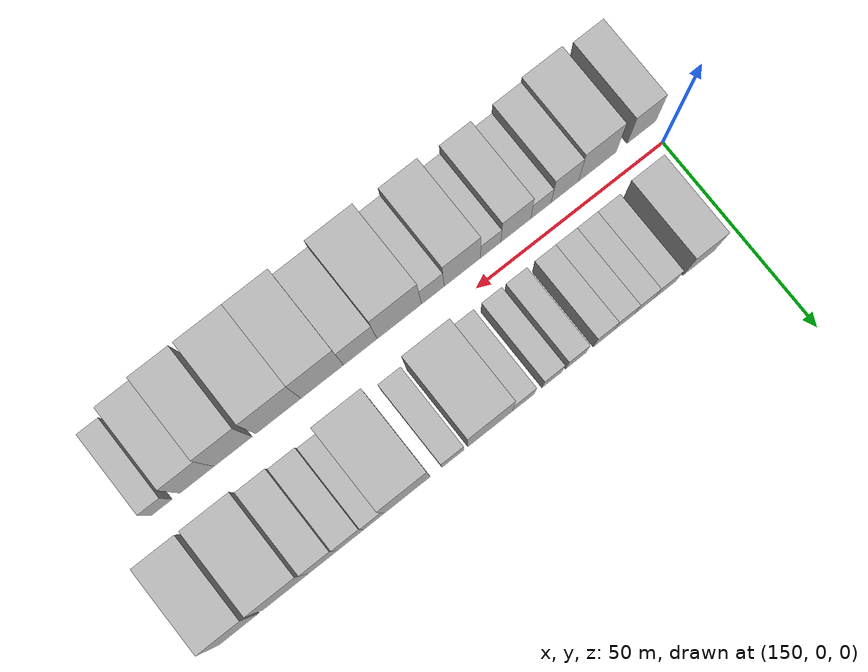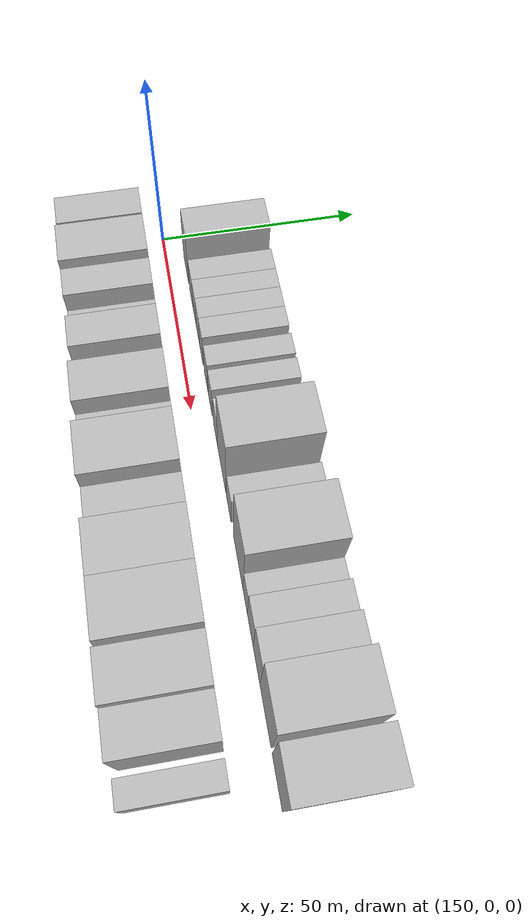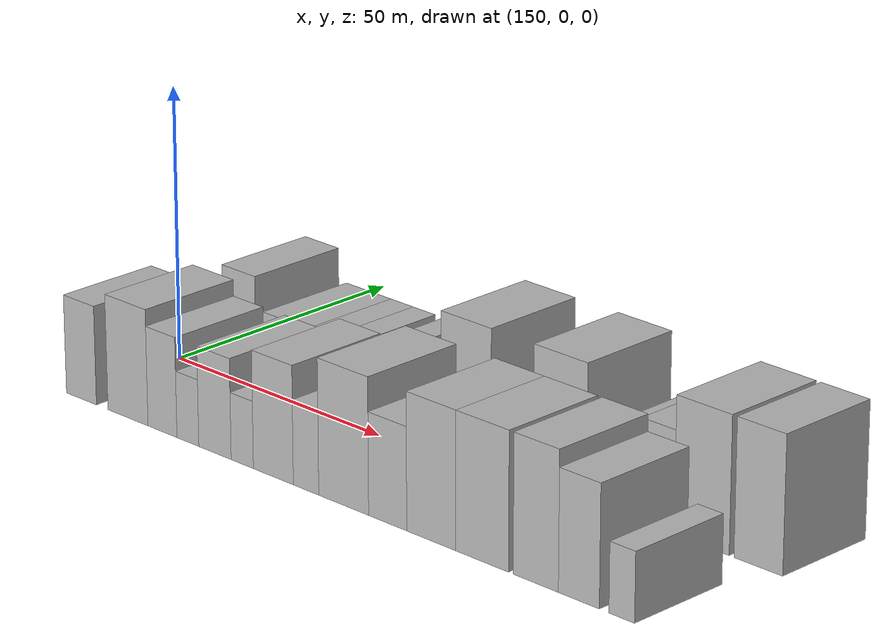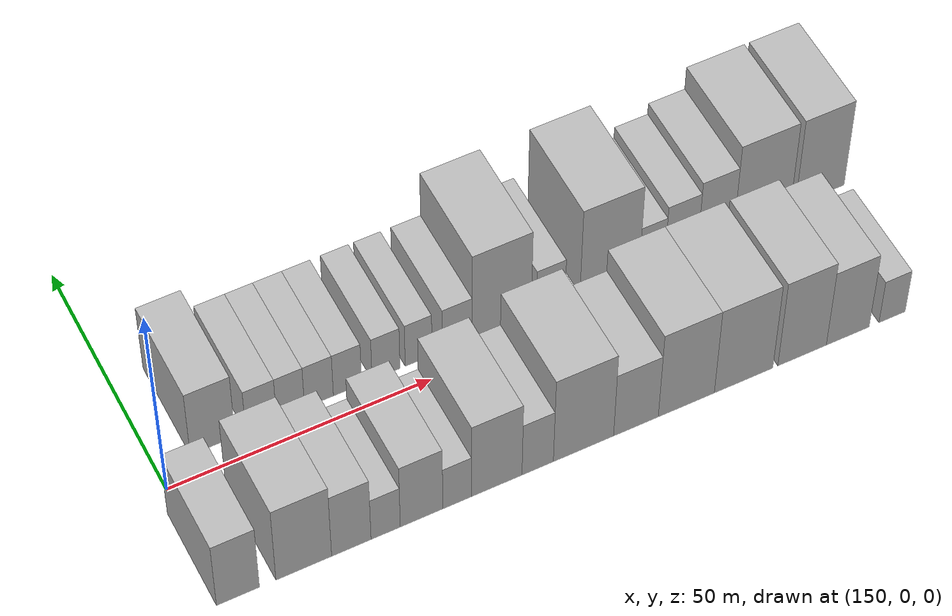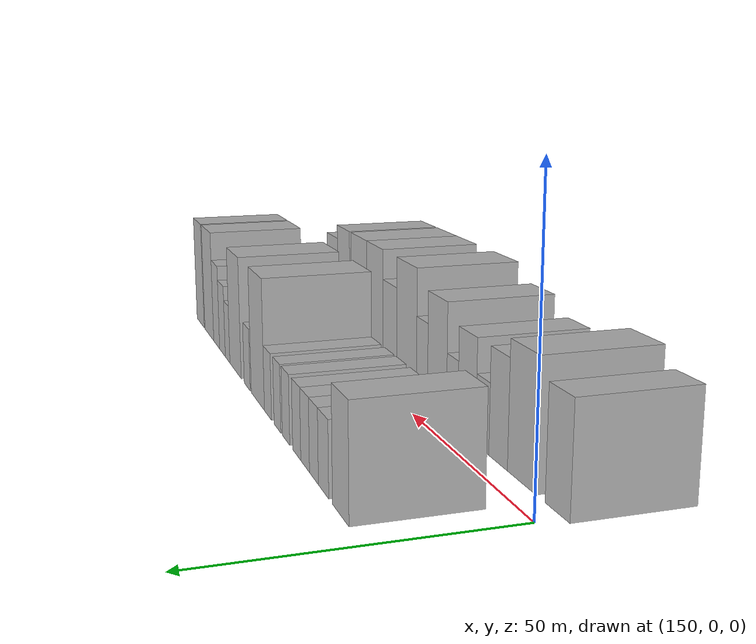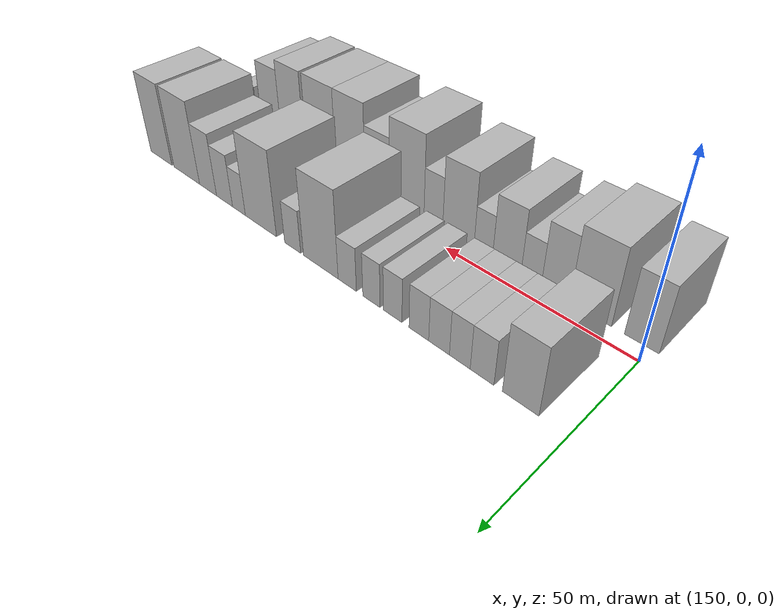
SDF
<sdf version="1.6">
 <world name="default">
  <model name="building_16">
   <static>1</static>
   <pose>160.5998 14.5000 0 0.000000 0.000000 1.570796</pose>
   <link name="link">
    <pose>0 0 9.00 0 0 0</pose>
    <collision name="collision"><geometry><box><size>20.0000 8.3838 18.0000</size></box></geometry></collision>
    <visual name="visual">
     <cast_shadows>0</cast_shadows>
     <geometry><box><size>20.0000 8.3838 18.0000</size></box></geometry>
     <material>
      <script>
       <uri>model://HANNAS_wall/materials/scripts</uri>
       <uri>model://HANNAS_wall/materials/textures</uri>
       <name>vrc/HANNAS_wall</name>
      </script>
     </material>
    </visual>
   </link>
  </model>
  <model name="building_17">
   <static>1</static>
   <pose>169.6943 14.5000 0 0.000000 0.000000 1.570796</pose>
   <link name="link">
    <pose>0 0 6.00 0 0 0</pose>
    <collision name="collision"><geometry><box><size>20.0000 5.8050 12.0000</size></box></geometry></collision>
    <visual name="visual">
     <cast_shadows>0</cast_shadows>
     <geometry><box><size>20.0000 5.8050 12.0000</size></box></geometry>
     <material>
      <script>
       <uri>model://HANNAS_wall/materials/scripts</uri>
       <uri>model://HANNAS_wall/materials/textures</uri>
       <name>vrc/HANNAS_wall</name>
      </script>
     </material>
    </visual>
   </link>
  </model>
  <model name="building_18">
   <static>1</static>
   <pose>175.2472 14.5000 0 0.000000 0.000000 1.570796</pose>
   <link name="link">
    <pose>0 0 6.00 0 0 0</pose>
    <collision name="collision"><geometry><box><size>20.0000 5.3009 12.0000</size></box></geometry></collision>
    <visual name="visual">
     <cast_shadows>0</cast_shadows>
     <geometry><box><size>20.0000 5.3009 12.0000</size></box></geometry>
     <material>
      <script>
       <uri>model://HANNAS_wall/materials/scripts</uri>
       <uri>model://HANNAS_wall/materials/textures</uri>
       <name>vrc/HANNAS_wall</name>
      </script>
     </material>
    </visual>
   </link>
  </model>
  <model name="building_19">
   <static>1</static>
   <pose>180.6435 14.5000 0 0.000000 0.000000 1.570796</pose>
   <link name="link">
    <pose>0 0 6.00 0 0 0</pose>
    <collision name="collision"><geometry><box><size>20.0000 5.4917 12.0000</size></box></geometry></collision>
    <visual name="visual">
     <cast_shadows>0</cast_shadows>
     <geometry><box><size>20.0000 5.4917 12.0000</size></box></geometry>
     <material>
      <script>
       <uri>model://HANNAS_wall/materials/scripts</uri>
       <uri>model://HANNAS_wall/materials/textures</uri>
       <name>vrc/HANNAS_wall</name>
      </script>
     </material>
    </visual>
   </link>
  </model>
  <model name="building_20">
   <static>1</static>
   <pose>186.0893 14.5000 0 0.000000 0.000000 1.570796</pose>
   <link name="link">
    <pose>0 0 6.00 0 0 0</pose>
    <collision name="collision"><geometry><box><size>20.0000 5.4000 12.0000</size></box></geometry></collision>
    <visual name="visual">
     <cast_shadows>0</cast_shadows>
     <geometry><box><size>20.0000 5.4000 12.0000</size></box></geometry>
     <material>
      <script>
       <uri>model://HANNAS_wall/materials/scripts</uri>
       <uri>model://HANNAS_wall/materials/textures</uri>
       <name>vrc/HANNAS_wall</name>
      </script>
     </material>
    </visual>
   </link>
  </model>
  <model name="building_21">
   <static>1</static>
   <pose>193.4776 14.5000 0 0.000000 0.000000 1.570796</pose>
   <link name="link">
    <pose>0 0 6.00 0 0 0</pose>
    <collision name="collision"><geometry><box><size>20.0000 5.3765 12.0000</size></box></geometry></collision>
    <visual name="visual">
     <cast_shadows>0</cast_shadows>
     <geometry><box><size>20.0000 5.3765 12.0000</size></box></geometry>
     <material>
      <script>
       <uri>model://HANNAS_wall/materials/scripts</uri>
       <uri>model://HANNAS_wall/materials/textures</uri>
       <name>vrc/HANNAS_wall</name>
      </script>
     </material>
    </visual>
   </link>
  </model>
  <model name="building_22">
   <static>1</static>
   <pose>199.7601 14.5000 0 0.000000 0.000000 1.570796</pose>
   <link name="link">
    <pose>0 0 6.00 0 0 0</pose>
    <collision name="collision"><geometry><box><size>20.0000 5.1885 12.0000</size></box></geometry></collision>
    <visual name="visual">
     <cast_shadows>0</cast_shadows>
     <geometry><box><size>20.0000 5.1885 12.0000</size></box></geometry>
     <material>
      <script>
       <uri>model://HANNAS_wall/materials/scripts</uri>
       <uri>model://HANNAS_wall/materials/textures</uri>
       <name>vrc/HANNAS_wall</name>
      </script>
     </material>
    </visual>
   </link>
  </model>
  <model name="building_23">
   <static>1</static>
   <pose>207.2518 14.5000 0 0.000000 0.000000 1.570796</pose>
   <link name="link">
    <pose>0 0 6.00 0 0 0</pose>
    <collision name="collision"><geometry><box><size>20.0000 5.7950 12.0000</size></box></geometry></collision>
    <visual name="visual">
     <cast_shadows>0</cast_shadows>
     <geometry><box><size>20.0000 5.7950 12.0000</size></box></geometry>
     <material>
      <script>
       <uri>model://HANNAS_wall/materials/scripts</uri>
       <uri>model://HANNAS_wall/materials/textures</uri>
       <name>vrc/HANNAS_wall</name>
      </script>
     </material>
    </visual>
   </link>
  </model>
  <model name="building_24">
   <static>1</static>
   <pose>215.9389 14.5000 0 0.000000 0.000000 1.570796</pose>
   <link name="link">
    <pose>0 0 12.00 0 0 0</pose>
    <collision name="collision"><geometry><box><size>20.0000 11.5791 24.0000</size></box></geometry></collision>
    <visual name="visual">
     <cast_shadows>0</cast_shadows>
     <geometry><box><size>20.0000 11.5791 24.0000</size></box></geometry>
     <material>
      <script>
       <uri>model://HANNAS_wall/materials/scripts</uri>
       <uri>model://HANNAS_wall/materials/textures</uri>
       <name>vrc/HANNAS_wall</name>
      </script>
     </material>
    </visual>
   </link>
  </model>
  <model name="building_25">
   <static>1</static>
   <pose>225.5829 14.5000 0 0.000000 0.000000 1.570796</pose>
   <link name="link">
    <pose>0 0 6.00 0 0 0</pose>
    <collision name="collision"><geometry><box><size>20.0000 5.7089 12.0000</size></box></geometry></collision>
    <visual name="visual">
     <cast_shadows>0</cast_shadows>
     <geometry><box><size>20.0000 5.7089 12.0000</size></box></geometry>
     <material>
      <script>
       <uri>model://HANNAS_wall/materials/scripts</uri>
       <uri>model://HANNAS_wall/materials/textures</uri>
       <name>vrc/HANNAS_wall</name>
      </script>
     </material>
    </visual>
   </link>
  </model>
  <model name="building_26">
   <static>1</static>
   <pose>237.3763 14.5000 0 0.000000 0.000000 1.570796</pose>
   <link name="link">
    <pose>0 0 12.00 0 0 0</pose>
    <collision name="collision"><geometry><box><size>20.0000 11.8779 24.0000</size></box></geometry></collision>
    <visual name="visual">
     <cast_shadows>0</cast_shadows>
     <geometry><box><size>20.0000 11.8779 24.0000</size></box></geometry>
     <material>
      <script>
       <uri>model://HANNAS_wall/materials/scripts</uri>
       <uri>model://HANNAS_wall/materials/textures</uri>
       <name>vrc/HANNAS_wall</name>
      </script>
     </material>
    </visual>
   </link>
  </model>
  <model name="building_27">
   <static>1</static>
   <pose>245.8918 14.5000 0 0.000000 0.000000 1.570796</pose>
   <link name="link">
    <pose>0 0 6.00 0 0 0</pose>
    <collision name="collision"><geometry><box><size>20.0000 5.1532 12.0000</size></box></geometry></collision>
    <visual name="visual">
     <cast_shadows>0</cast_shadows>
     <geometry><box><size>20.0000 5.1532 12.0000</size></box></geometry>
     <material>
      <script>
       <uri>model://HANNAS_wall/materials/scripts</uri>
       <uri>model://HANNAS_wall/materials/textures</uri>
       <name>vrc/HANNAS_wall</name>
      </script>
     </material>
    </visual>
   </link>
  </model>
  <model name="building_28">
   <static>1</static>
   <pose>251.8001 14.5000 0 0.000000 0.000000 1.570796</pose>
   <link name="link">
    <pose>0 0 7.50 0 0 0</pose>
    <collision name="collision"><geometry><box><size>20.0000 6.6634 15.0000</size></box></geometry></collision>
    <visual name="visual">
     <cast_shadows>0</cast_shadows>
     <geometry><box><size>20.0000 6.6634 15.0000</size></box></geometry>
     <material>
      <script>
       <uri>model://HANNAS_wall/materials/scripts</uri>
       <uri>model://HANNAS_wall/materials/textures</uri>
       <name>vrc/HANNAS_wall</name>
      </script>
     </material>
    </visual>
   </link>
  </model>
  <model name="building_29">
   <static>1</static>
   <pose>258.7989 14.5000 0 0.000000 0.000000 1.570796</pose>
   <link name="link">
    <pose>0 0 9.00 0 0 0</pose>
    <collision name="collision"><geometry><box><size>20.0000 7.3343 18.0000</size></box></geometry></collision>
    <visual name="visual">
     <cast_shadows>0</cast_shadows>
     <geometry><box><size>20.0000 7.3343 18.0000</size></box></geometry>
     <material>
      <script>
       <uri>model://HANNAS_wall/materials/scripts</uri>
       <uri>model://HANNAS_wall/materials/textures</uri>
       <name>vrc/HANNAS_wall</name>
      </script>
     </material>
    </visual>
   </link>
  </model>
  <model name="building_30">
   <static>1</static>
   <pose>268.2952 14.5000 0 0.000000 0.000000 1.570796</pose>
   <link name="link">
    <pose>0 0 12.00 0 0 0</pose>
    <collision name="collision"><geometry><box><size>20.0000 11.6583 24.0000</size></box></geometry></collision>
    <visual name="visual">
     <cast_shadows>0</cast_shadows>
     <geometry><box><size>20.0000 11.6583 24.0000</size></box></geometry>
     <material>
      <script>
       <uri>model://HANNAS_wall/materials/scripts</uri>
       <uri>model://HANNAS_wall/materials/textures</uri>
       <name>vrc/HANNAS_wall</name>
      </script>
     </material>
    </visual>
   </link>
  </model>
  <model name="building_31">
   <static>1</static>
   <pose>280.1811 14.5000 0 0.000000 0.000000 1.570796</pose>
   <link name="link">
    <pose>0 0 12.00 0 0 0</pose>
    <collision name="collision"><geometry><box><size>20.0000 10.1135 24.0000</size></box></geometry></collision>
    <visual name="visual">
     <cast_shadows>0</cast_shadows>
     <geometry><box><size>20.0000 10.1135 24.0000</size></box></geometry>
     <material>
      <script>
       <uri>model://HANNAS_wall/materials/scripts</uri>
       <uri>model://HANNAS_wall/materials/textures</uri>
       <name>vrc/HANNAS_wall</name>
      </script>
     </material>
    </visual>
   </link>
  </model>
  <model name="building_46">
   <static>1</static>
   <pose>152.0969 -14.5000 0 0.000000 0.000000 1.570796</pose>
   <link name="link">
    <pose>0 0 9.00 0 0 0</pose>
    <collision name="collision"><geometry><box><size>20.0000 7.8197 18.0000</size></box></geometry></collision>
    <visual name="visual">
     <cast_shadows>0</cast_shadows>
     <geometry><box><size>20.0000 7.8197 18.0000</size></box></geometry>
     <material>
      <script>
       <uri>model://HANNAS_wall/materials/scripts</uri>
       <uri>model://HANNAS_wall/materials/textures</uri>
       <name>vrc/HANNAS_wall</name>
      </script>
     </material>
    </visual>
   </link>
  </model>
  <model name="building_47">
   <static>1</static>
   <pose>164.1275 -14.5000 0 0.000000 0.000000 1.570796</pose>
   <link name="link">
    <pose>0 0 10.50 0 0 0</pose>
    <collision name="collision"><geometry><box><size>20.0000 10.2415 21.0000</size></box></geometry></collision>
    <visual name="visual">
     <cast_shadows>0</cast_shadows>
     <geometry><box><size>20.0000 10.2415 21.0000</size></box></geometry>
     <material>
      <script>
       <uri>model://HANNAS_wall/materials/scripts</uri>
       <uri>model://HANNAS_wall/materials/textures</uri>
       <name>vrc/HANNAS_wall</name>
      </script>
     </material>
    </visual>
   </link>
  </model>
  <model name="building_48">
   <static>1</static>
   <pose>172.8965 -14.5000 0 0.000000 0.000000 1.570796</pose>
   <link name="link">
    <pose>0 0 9.00 0 0 0</pose>
    <collision name="collision"><geometry><box><size>20.0000 7.2965 18.0000</size></box></geometry></collision>
    <visual name="visual">
     <cast_shadows>0</cast_shadows>
     <geometry><box><size>20.0000 7.2965 18.0000</size></box></geometry>
     <material>
      <script>
       <uri>model://HANNAS_wall/materials/scripts</uri>
       <uri>model://HANNAS_wall/materials/textures</uri>
       <name>vrc/HANNAS_wall</name>
      </script>
     </material>
    </visual>
   </link>
  </model>
  <model name="building_49">
   <static>1</static>
   <pose>179.2691 -14.5000 0 0.000000 0.000000 1.570796</pose>
   <link name="link">
    <pose>0 0 6.00 0 0 0</pose>
    <collision name="collision"><geometry><box><size>20.0000 5.4486 12.0000</size></box></geometry></collision>
    <visual name="visual">
     <cast_shadows>0</cast_shadows>
     <geometry><box><size>20.0000 5.4486 12.0000</size></box></geometry>
     <material>
      <script>
       <uri>model://HANNAS_wall/materials/scripts</uri>
       <uri>model://HANNAS_wall/materials/textures</uri>
       <name>vrc/HANNAS_wall</name>
      </script>
     </material>
    </visual>
   </link>
  </model>
  <model name="building_50">
   <static>1</static>
   <pose>185.9761 -14.5000 0 0.000000 0.000000 1.570796</pose>
   <link name="link">
    <pose>0 0 9.00 0 0 0</pose>
    <collision name="collision"><geometry><box><size>20.0000 7.9655 18.0000</size></box></geometry></collision>
    <visual name="visual">
     <cast_shadows>0</cast_shadows>
     <geometry><box><size>20.0000 7.9655 18.0000</size></box></geometry>
     <material>
      <script>
       <uri>model://HANNAS_wall/materials/scripts</uri>
       <uri>model://HANNAS_wall/materials/textures</uri>
       <name>vrc/HANNAS_wall</name>
      </script>
     </material>
    </visual>
   </link>
  </model>
  <model name="building_51">
   <static>1</static>
   <pose>192.6598 -14.5000 0 0.000000 0.000000 1.570796</pose>
   <link name="link">
    <pose>0 0 6.00 0 0 0</pose>
    <collision name="collision"><geometry><box><size>20.0000 5.4017 12.0000</size></box></geometry></collision>
    <visual name="visual">
     <cast_shadows>0</cast_shadows>
     <geometry><box><size>20.0000 5.4017 12.0000</size></box></geometry>
     <material>
      <script>
       <uri>model://HANNAS_wall/materials/scripts</uri>
       <uri>model://HANNAS_wall/materials/textures</uri>
       <name>vrc/HANNAS_wall</name>
      </script>
     </material>
    </visual>
   </link>
  </model>
  <model name="building_52">
   <static>1</static>
   <pose>200.1609 -14.5000 0 0.000000 0.000000 1.570796</pose>
   <link name="link">
    <pose>0 0 10.50 0 0 0</pose>
    <collision name="collision"><geometry><box><size>20.0000 9.6006 21.0000</size></box></geometry></collision>
    <visual name="visual">
     <cast_shadows>0</cast_shadows>
     <geometry><box><size>20.0000 9.6006 21.0000</size></box></geometry>
     <material>
      <script>
       <uri>model://HANNAS_wall/materials/scripts</uri>
       <uri>model://HANNAS_wall/materials/textures</uri>
       <name>vrc/HANNAS_wall</name>
      </script>
     </material>
    </visual>
   </link>
  </model>
  <model name="building_53">
   <static>1</static>
   <pose>207.9636 -14.5000 0 0.000000 0.000000 1.570796</pose>
   <link name="link">
    <pose>0 0 7.50 0 0 0</pose>
    <collision name="collision"><geometry><box><size>20.0000 6.0047 15.0000</size></box></geometry></collision>
    <visual name="visual">
     <cast_shadows>0</cast_shadows>
     <geometry><box><size>20.0000 6.0047 15.0000</size></box></geometry>
     <material>
      <script>
       <uri>model://HANNAS_wall/materials/scripts</uri>
       <uri>model://HANNAS_wall/materials/textures</uri>
       <name>vrc/HANNAS_wall</name>
      </script>
     </material>
    </visual>
   </link>
  </model>
  <model name="building_54">
   <static>1</static>
   <pose>216.7717 -14.5000 0 0.000000 0.000000 1.570796</pose>
   <link name="link">
    <pose>0 0 12.00 0 0 0</pose>
    <collision name="collision"><geometry><box><size>20.0000 11.6116 24.0000</size></box></geometry></collision>
    <visual name="visual">
     <cast_shadows>0</cast_shadows>
     <geometry><box><size>20.0000 11.6116 24.0000</size></box></geometry>
     <material>
      <script>
       <uri>model://HANNAS_wall/materials/scripts</uri>
       <uri>model://HANNAS_wall/materials/textures</uri>
       <name>vrc/HANNAS_wall</name>
      </script>
     </material>
    </visual>
   </link>
  </model>
  <model name="building_55">
   <static>1</static>
   <pose>226.9298 -14.5000 0 0.000000 0.000000 1.570796</pose>
   <link name="link">
    <pose>0 0 9.00 0 0 0</pose>
    <collision name="collision"><geometry><box><size>20.0000 8.7046 18.0000</size></box></geometry></collision>
    <visual name="visual">
     <cast_shadows>0</cast_shadows>
     <geometry><box><size>20.0000 8.7046 18.0000</size></box></geometry>
     <material>
      <script>
       <uri>model://HANNAS_wall/materials/scripts</uri>
       <uri>model://HANNAS_wall/materials/textures</uri>
       <name>vrc/HANNAS_wall</name>
      </script>
     </material>
    </visual>
   </link>
  </model>
  <model name="building_56">
   <static>1</static>
   <pose>236.7821 -14.5000 0 0.000000 0.000000 1.570796</pose>
   <link name="link">
    <pose>0 0 12.00 0 0 0</pose>
    <collision name="collision"><geometry><box><size>20.0000 10.9999 24.0000</size></box></geometry></collision>
    <visual name="visual">
     <cast_shadows>0</cast_shadows>
     <geometry><box><size>20.0000 10.9999 24.0000</size></box></geometry>
     <material>
      <script>
       <uri>model://HANNAS_wall/materials/scripts</uri>
       <uri>model://HANNAS_wall/materials/textures</uri>
       <name>vrc/HANNAS_wall</name>
      </script>
     </material>
    </visual>
   </link>
  </model>
  <model name="building_57">
   <static>1</static>
   <pose>248.0839 -14.5000 0 0.000000 0.000000 1.570796</pose>
   <link name="link">
    <pose>0 0 12.00 0 0 0</pose>
    <collision name="collision"><geometry><box><size>20.0000 11.6037 24.0000</size></box></geometry></collision>
    <visual name="visual">
     <cast_shadows>0</cast_shadows>
     <geometry><box><size>20.0000 11.6037 24.0000</size></box></geometry>
     <material>
      <script>
       <uri>model://HANNAS_wall/materials/scripts</uri>
       <uri>model://HANNAS_wall/materials/textures</uri>
       <name>vrc/HANNAS_wall</name>
      </script>
     </material>
    </visual>
   </link>
  </model>
  <model name="building_58">
   <static>1</static>
   <pose>259.7429 -14.5000 0 0.000000 0.000000 1.570796</pose>
   <link name="link">
    <pose>0 0 12.00 0 0 0</pose>
    <collision name="collision"><geometry><box><size>20.0000 9.7143 24.0000</size></box></geometry></collision>
    <visual name="visual">
     <cast_shadows>0</cast_shadows>
     <geometry><box><size>20.0000 9.7143 24.0000</size></box></geometry>
     <material>
      <script>
       <uri>model://HANNAS_wall/materials/scripts</uri>
       <uri>model://HANNAS_wall/materials/textures</uri>
       <name>vrc/HANNAS_wall</name>
      </script>
     </material>
    </visual>
   </link>
  </model>
  <model name="building_59">
   <static>1</static>
   <pose>268.9270 -14.5000 0 0.000000 0.000000 1.570796</pose>
   <link name="link">
    <pose>0 0 10.50 0 0 0</pose>
    <collision name="collision"><geometry><box><size>20.0000 8.6540 21.0000</size></box></geometry></collision>
    <visual name="visual">
     <cast_shadows>0</cast_shadows>
     <geometry><box><size>20.0000 8.6540 21.0000</size></box></geometry>
     <material>
      <script>
       <uri>model://HANNAS_wall/materials/scripts</uri>
       <uri>model://HANNAS_wall/materials/textures</uri>
       <name>vrc/HANNAS_wall</name>
      </script>
     </material>
    </visual>
   </link>
  </model>
  <model name="building_60">
   <static>1</static>
   <pose>277.9163 -14.5000 0 0.000000 0.000000 1.570796</pose>
   <link name="link">
    <pose>0 0 6.00 0 0 0</pose>
    <collision name="collision"><geometry><box><size>20.0000 5.3246 12.0000</size></box></geometry></collision>
    <visual name="visual">
     <cast_shadows>0</cast_shadows>
     <geometry><box><size>20.0000 5.3246 12.0000</size></box></geometry>
     <material>
      <script>
       <uri>model://HANNAS_wall/materials/scripts</uri>
       <uri>model://HANNAS_wall/materials/textures</uri>
       <name>vrc/HANNAS_wall</name>
      </script>
     </material>
    </visual>
   </link>
  </model>
 </world>
</sdf>
